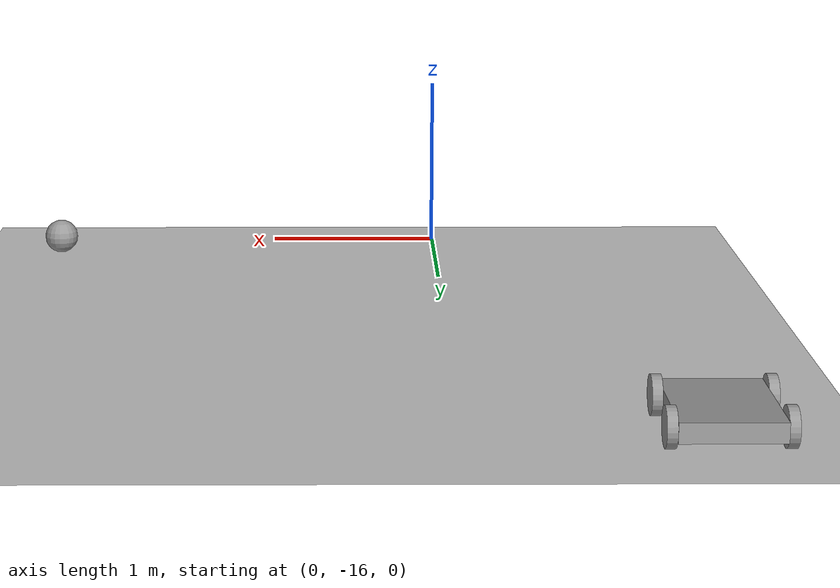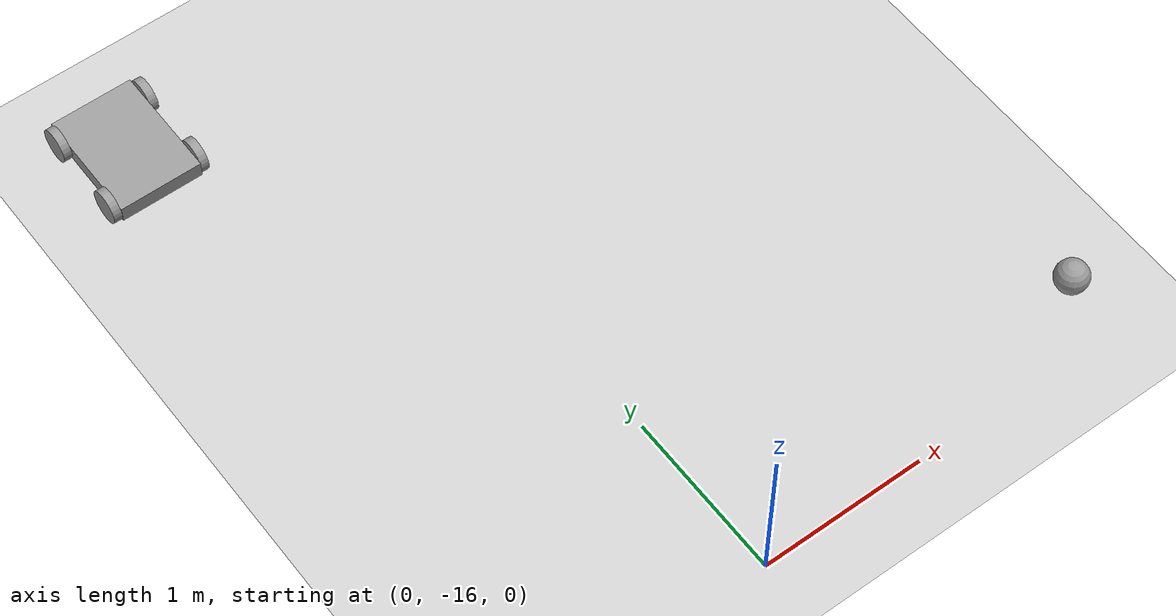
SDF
<sdf version="1.6">
 <world name="default">
  <model name="ground_plane">
   <static>1</static>
   <link name="link">
    <collision name="collision">
     <geometry><plane><normal>0 0 1</normal><size>100 100</size></plane></geometry>
     <surface>
      <contact><collide_bitmask>65535</collide_bitmask></contact>
      <friction><ode><mu>100</mu><mu2>50</mu2></ode></friction>
     </surface>
    </collision>
    <visual name="visual">
     <cast_shadows>0</cast_shadows>
     <geometry><plane><normal>0 0 1</normal><size>100 100</size></plane></geometry>
     <material>
      <script><uri>file://media/materials/scripts/gazebo.material</uri><name>Gazebo/Grey</name></script>
     </material>
    </visual>
   </link>
  </model>
  <model name="robot_car">
   <model name="robot_car">
    <model name="myrobot">
     <link name="link_1">
      <pose>0.275023 -0.249989 0 1.5707 0 1.5707</pose>
      <inertial>
       <mass>1</mass>
       <inertia><ixx>0.145833</ixx><ixy>0</ixy><ixz>0</ixz><iyy>0.145833</iyy><iyz>0</iyz><izz>0.125</izz></inertia>
      </inertial>
      <visual name="visual">
       <geometry><cylinder><radius>0.1</radius><length>0.05</length></cylinder></geometry>
       <material>
        <lighting>1</lighting>
        <script><uri>file://media/materials/scripts/gazebo.material</uri><name>Gazebo/Grey</name></script>
        <shader type="pixel"><normal_map>__default__</normal_map></shader>
        <ambient>0.3 0.3 0.3 1</ambient>
        <diffuse>0.7 0.7 0.7 1</diffuse>
        <specular>0.01 0.01 0.01 1</specular>
        <emissive>0 0 0 1</emissive>
       </material>
      </visual>
      <collision name="collision">
       <geometry><cylinder><radius>0.1</radius><length>0.05</length></cylinder></geometry>
       <surface>
        <friction>
         <ode><mu>1</mu><mu2>1</mu2><fdir1>0 0 0</fdir1><slip1>0</slip1><slip2>0</slip2></ode>
         <torsional>
          <coefficient>1</coefficient>
          <patch_radius>0</patch_radius>
          <surface_radius>0</surface_radius>
          <use_patch_radius>1</use_patch_radius>
          <ode><slip>0</slip></ode>
         </torsional>
        </friction>
        <bounce><restitution_coefficient>0</restitution_coefficient><threshold>1e+06</threshold></bounce>
        <contact>
         <collide_without_contact>0</collide_without_contact>
         <collide_without_contact_bitmask>1</collide_without_contact_bitmask>
         <collide_bitmask>1</collide_bitmask>
         <ode>
          <soft_cfm>0</soft_cfm>
          <soft_erp>0.2</soft_erp>
          <kp>1e+13</kp>
          <kd>1</kd>
          <max_vel>0.01</max_vel>
          <min_depth>0</min_depth>
         </ode>
         <bullet>
          <split_impulse>1</split_impulse>
          <split_impulse_penetration_threshold>-0.01</split_impulse_penetration_threshold>
          <soft_cfm>0</soft_cfm>
          <soft_erp>0.2</soft_erp>
          <kp>1e+13</kp>
          <kd>1</kd>
         </bullet>
        </contact>
       </surface>
      </collision>
     </link>
     <link name="link_1_clone">
      <pose>0.275019 0.249995 0 1.5707 0 1.5707</pose>
      <inertial>
       <mass>1</mass>
       <inertia><ixx>0.145833</ixx><ixy>0</ixy><ixz>0</ixz><iyy>0.145833</iyy><iyz>0</iyz><izz>0.125</izz></inertia>
      </inertial>
      <visual name="visual">
       <geometry><cylinder><radius>0.1</radius><length>0.05</length></cylinder></geometry>
       <material>
        <lighting>1</lighting>
        <script><uri>file://media/materials/scripts/gazebo.material</uri><name>Gazebo/Grey</name></script>
        <shader type="pixel"><normal_map>__default__</normal_map></shader>
        <ambient>0.3 0.3 0.3 1</ambient>
        <diffuse>0.7 0.7 0.7 1</diffuse>
        <specular>0.01 0.01 0.01 1</specular>
        <emissive>0 0 0 1</emissive>
       </material>
      </visual>
      <collision name="collision">
       <geometry><cylinder><radius>0.1</radius><length>0.05</length></cylinder></geometry>
       <surface>
        <friction>
         <ode><mu>1</mu><mu2>1</mu2><fdir1>0 0 0</fdir1><slip1>0</slip1><slip2>0</slip2></ode>
         <torsional>
          <coefficient>1</coefficient>
          <patch_radius>0</patch_radius>
          <surface_radius>0</surface_radius>
          <use_patch_radius>1</use_patch_radius>
          <ode><slip>0</slip></ode>
         </torsional>
        </friction>
        <bounce><restitution_coefficient>0</restitution_coefficient><threshold>1e+06</threshold></bounce>
        <contact>
         <collide_without_contact>0</collide_without_contact>
         <collide_without_contact_bitmask>1</collide_without_contact_bitmask>
         <collide_bitmask>1</collide_bitmask>
         <ode>
          <soft_cfm>0</soft_cfm>
          <soft_erp>0.2</soft_erp>
          <kp>1e+13</kp>
          <kd>1</kd>
          <max_vel>0.01</max_vel>
          <min_depth>0</min_depth>
         </ode>
         <bullet>
          <split_impulse>1</split_impulse>
          <split_impulse_penetration_threshold>-0.01</split_impulse_penetration_threshold>
          <soft_cfm>0</soft_cfm>
          <soft_erp>0.2</soft_erp>
          <kp>1e+13</kp>
          <kd>1</kd>
         </bullet>
        </contact>
       </surface>
      </collision>
     </link>
     <link name="link_1_clone_0">
      <pose>-0.27502 0.249995 0 1.5707 0 1.5707</pose>
      <inertial>
       <mass>1</mass>
       <inertia><ixx>0.145833</ixx><ixy>0</ixy><ixz>0</ixz><iyy>0.145833</iyy><iyz>0</iyz><izz>0.125</izz></inertia>
      </inertial>
      <visual name="visual">
       <geometry><cylinder><radius>0.1</radius><length>0.05</length></cylinder></geometry>
       <material>
        <lighting>1</lighting>
        <script><uri>file://media/materials/scripts/gazebo.material</uri><name>Gazebo/Grey</name></script>
        <shader type="pixel"><normal_map>__default__</normal_map></shader>
        <ambient>0.3 0.3 0.3 1</ambient>
        <diffuse>0.7 0.7 0.7 1</diffuse>
        <specular>0.01 0.01 0.01 1</specular>
        <emissive>0 0 0 1</emissive>
       </material>
      </visual>
      <collision name="collision">
       <geometry><cylinder><radius>0.1</radius><length>0.05</length></cylinder></geometry>
       <surface>
        <friction>
         <ode><mu>1</mu><mu2>1</mu2><fdir1>0 0 0</fdir1><slip1>0</slip1><slip2>0</slip2></ode>
         <torsional>
          <coefficient>1</coefficient>
          <patch_radius>0</patch_radius>
          <surface_radius>0</surface_radius>
          <use_patch_radius>1</use_patch_radius>
          <ode><slip>0</slip></ode>
         </torsional>
        </friction>
        <bounce><restitution_coefficient>0</restitution_coefficient><threshold>1e+06</threshold></bounce>
        <contact>
         <collide_without_contact>0</collide_without_contact>
         <collide_without_contact_bitmask>1</collide_without_contact_bitmask>
         <collide_bitmask>1</collide_bitmask>
         <ode>
          <soft_cfm>0</soft_cfm>
          <soft_erp>0.2</soft_erp>
          <kp>1e+13</kp>
          <kd>1</kd>
          <max_vel>0.01</max_vel>
          <min_depth>0</min_depth>
         </ode>
         <bullet>
          <split_impulse>1</split_impulse>
          <split_impulse_penetration_threshold>-0.01</split_impulse_penetration_threshold>
          <soft_cfm>0</soft_cfm>
          <soft_erp>0.2</soft_erp>
          <kp>1e+13</kp>
          <kd>1</kd>
         </bullet>
        </contact>
       </surface>
      </collision>
     </link>
     <link name="link_1_clone_1">
      <pose>-0.27502 -0.25 0 1.5707 0 1.5707</pose>
      <inertial>
       <mass>1</mass>
       <inertia><ixx>0.145833</ixx><ixy>0</ixy><ixz>0</ixz><iyy>0.145833</iyy><iyz>0</iyz><izz>0.125</izz></inertia>
      </inertial>
      <visual name="visual">
       <geometry><cylinder><radius>0.1</radius><length>0.05</length></cylinder></geometry>
       <material>
        <lighting>1</lighting>
        <script><uri>file://media/materials/scripts/gazebo.material</uri><name>Gazebo/Grey</name></script>
        <shader type="pixel"><normal_map>__default__</normal_map></shader>
        <ambient>0.3 0.3 0.3 1</ambient>
        <diffuse>0.7 0.7 0.7 1</diffuse>
        <specular>0.01 0.01 0.01 1</specular>
        <emissive>0 0 0 1</emissive>
       </material>
      </visual>
      <collision name="collision">
       <geometry><cylinder><radius>0.1</radius><length>0.05</length></cylinder></geometry>
       <surface>
        <friction>
         <ode><mu>1</mu><mu2>1</mu2><fdir1>0 0 0</fdir1><slip1>0</slip1><slip2>0</slip2></ode>
         <torsional>
          <coefficient>1</coefficient>
          <patch_radius>0</patch_radius>
          <surface_radius>0</surface_radius>
          <use_patch_radius>1</use_patch_radius>
          <ode><slip>0</slip></ode>
         </torsional>
        </friction>
        <bounce><restitution_coefficient>0</restitution_coefficient><threshold>1e+06</threshold></bounce>
        <contact>
         <collide_without_contact>0</collide_without_contact>
         <collide_without_contact_bitmask>1</collide_without_contact_bitmask>
         <collide_bitmask>1</collide_bitmask>
         <ode>
          <soft_cfm>0</soft_cfm>
          <soft_erp>0.2</soft_erp>
          <kp>1e+13</kp>
          <kd>1</kd>
          <max_vel>0.01</max_vel>
          <min_depth>0</min_depth>
         </ode>
         <bullet>
          <split_impulse>1</split_impulse>
          <split_impulse_penetration_threshold>-0.01</split_impulse_penetration_threshold>
          <soft_cfm>0</soft_cfm>
          <soft_erp>0.2</soft_erp>
          <kp>1e+13</kp>
          <kd>1</kd>
         </bullet>
        </contact>
       </surface>
      </collision>
     </link>
     <link name="link_2">
      <pose>-0 -2e-06 0 0 -0 0</pose>
      <inertial>
       <mass>1</mass>
       <inertia>
        <ixx>0.166667</ixx>
        <ixy>0</ixy>
        <ixz>0</ixz>
        <iyy>0.166667</iyy>
        <iyz>0</iyz>
        <izz>0.166667</izz>
       </inertia>
      </inertial>
      <visual name="visual">
       <geometry><box><size>0.5 0.7 0.1</size></box></geometry>
       <material>
        <lighting>1</lighting>
        <script><uri>file://media/materials/scripts/gazebo.material</uri><name>Gazebo/Grey</name></script>
        <shader type="pixel"><normal_map>__default__</normal_map></shader>
        <ambient>0.3 0.3 0.3 1</ambient>
        <diffuse>0.7 0.7 0.7 1</diffuse>
        <specular>0.01 0.01 0.01 1</specular>
        <emissive>0 0 0 1</emissive>
       </material>
      </visual>
      <collision name="collision">
       <geometry><box><size>0.5 0.7 0.1</size></box></geometry>
       <surface>
        <friction>
         <ode><mu>1</mu><mu2>1</mu2><fdir1>0 0 0</fdir1><slip1>0</slip1><slip2>0</slip2></ode>
         <torsional>
          <coefficient>1</coefficient>
          <patch_radius>0</patch_radius>
          <surface_radius>0</surface_radius>
          <use_patch_radius>1</use_patch_radius>
          <ode><slip>0</slip></ode>
         </torsional>
        </friction>
        <bounce><restitution_coefficient>0</restitution_coefficient><threshold>1e+06</threshold></bounce>
        <contact>
         <collide_without_contact>0</collide_without_contact>
         <collide_without_contact_bitmask>1</collide_without_contact_bitmask>
         <collide_bitmask>1</collide_bitmask>
         <ode>
          <soft_cfm>0</soft_cfm>
          <soft_erp>0.2</soft_erp>
          <kp>1e+13</kp>
          <kd>1</kd>
          <max_vel>0.01</max_vel>
          <min_depth>0</min_depth>
         </ode>
         <bullet>
          <split_impulse>1</split_impulse>
          <split_impulse_penetration_threshold>-0.01</split_impulse_penetration_threshold>
          <soft_cfm>0</soft_cfm>
          <soft_erp>0.2</soft_erp>
          <kp>1e+13</kp>
          <kd>1</kd>
         </bullet>
        </contact>
       </surface>
      </collision>
     </link>
     <joint name="link_2_JOINT_10" type="revolute">
      <parent>link_2</parent>
      <child>link_1</child>
      <axis>
       <xyz>1 0 0</xyz>
       <use_parent_model_frame>0</use_parent_model_frame>
       <limit>
        <lower>-1.79769e+308</lower>
        <upper>1.79769e+308</upper>
        <effort>-1</effort>
        <velocity>-1</velocity>
       </limit>
       <dynamics>
        <spring_reference>0</spring_reference>
        <spring_stiffness>0</spring_stiffness>
        <damping>0</damping>
       </dynamics>
      </axis>
      <physics>
       <ode><limit><cfm>0</cfm><erp>0.2</erp></limit><suspension><cfm>0</cfm><erp>0.2</erp></suspension></ode>
      </physics>
     </joint>
     <joint name="link_2_JOINT_11" type="revolute">
      <parent>link_2</parent>
      <child>link_1_clone_0</child>
      <axis>
       <xyz>1 0 0</xyz>
       <use_parent_model_frame>0</use_parent_model_frame>
       <limit>
        <lower>-1.79769e+308</lower>
        <upper>1.79769e+308</upper>
        <effort>-1</effort>
        <velocity>-1</velocity>
       </limit>
       <dynamics>
        <spring_reference>0</spring_reference>
        <spring_stiffness>0</spring_stiffness>
        <damping>0</damping>
       </dynamics>
      </axis>
      <physics>
       <ode><limit><cfm>0</cfm><erp>0.2</erp></limit><suspension><cfm>0</cfm><erp>0.2</erp></suspension></ode>
      </physics>
     </joint>
     <joint name="link_2_JOINT_12" type="revolute">
      <parent>link_2</parent>
      <child>link_1_clone_1</child>
      <axis>
       <xyz>1 0 0</xyz>
       <use_parent_model_frame>0</use_parent_model_frame>
       <limit>
        <lower>-1.79769e+308</lower>
        <upper>1.79769e+308</upper>
        <effort>-1</effort>
        <velocity>-1</velocity>
       </limit>
       <dynamics>
        <spring_reference>0</spring_reference>
        <spring_stiffness>0</spring_stiffness>
        <damping>0</damping>
       </dynamics>
      </axis>
      <physics>
       <ode><limit><cfm>0</cfm><erp>0.2</erp></limit><suspension><cfm>0</cfm><erp>0.2</erp></suspension></ode>
      </physics>
     </joint>
     <joint name="link_2_JOINT_3" type="revolute">
      <parent>link_2</parent>
      <child>link_1</child>
      <axis>
       <xyz>1 0 0</xyz>
       <use_parent_model_frame>0</use_parent_model_frame>
       <limit>
        <lower>-1.79769e+308</lower>
        <upper>1.79769e+308</upper>
        <effort>-1</effort>
        <velocity>-1</velocity>
       </limit>
       <dynamics>
        <spring_reference>0</spring_reference>
        <spring_stiffness>0</spring_stiffness>
        <damping>0</damping>
       </dynamics>
      </axis>
      <physics>
       <ode><limit><cfm>0</cfm><erp>0.2</erp></limit><suspension><cfm>0</cfm><erp>0.2</erp></suspension></ode>
      </physics>
     </joint>
     <joint name="link_2_JOINT_4" type="revolute">
      <parent>link_2</parent>
      <child>link_1_clone</child>
      <axis>
       <xyz>1 0 0</xyz>
       <use_parent_model_frame>0</use_parent_model_frame>
       <limit>
        <lower>-1.79769e+308</lower>
        <upper>1.79769e+308</upper>
        <effort>-1</effort>
        <velocity>-1</velocity>
       </limit>
       <dynamics>
        <spring_reference>0</spring_reference>
        <spring_stiffness>0</spring_stiffness>
        <damping>0</damping>
       </dynamics>
      </axis>
      <physics>
       <ode><limit><cfm>0</cfm><erp>0.2</erp></limit><suspension><cfm>0</cfm><erp>0.2</erp></suspension></ode>
      </physics>
     </joint>
     <joint name="link_2_JOINT_5" type="revolute">
      <parent>link_2</parent>
      <child>link_1_clone_0</child>
      <axis>
       <xyz>1 0 0</xyz>
       <use_parent_model_frame>0</use_parent_model_frame>
       <limit>
        <lower>-1.79769e+308</lower>
        <upper>1.79769e+308</upper>
        <effort>-1</effort>
        <velocity>-1</velocity>
       </limit>
       <dynamics>
        <spring_reference>0</spring_reference>
        <spring_stiffness>0</spring_stiffness>
        <damping>0</damping>
       </dynamics>
      </axis>
      <physics>
       <ode><limit><cfm>0</cfm><erp>0.2</erp></limit><suspension><cfm>0</cfm><erp>0.2</erp></suspension></ode>
      </physics>
     </joint>
     <joint name="link_2_JOINT_6" type="revolute">
      <parent>link_2</parent>
      <child>link_1_clone_1</child>
      <axis>
       <xyz>1 0 0</xyz>
       <use_parent_model_frame>0</use_parent_model_frame>
       <limit>
        <lower>-1.79769e+308</lower>
        <upper>1.79769e+308</upper>
        <effort>-1</effort>
        <velocity>-1</velocity>
       </limit>
       <dynamics>
        <spring_reference>0</spring_reference>
        <spring_stiffness>0</spring_stiffness>
        <damping>0</damping>
       </dynamics>
      </axis>
      <physics>
       <ode><limit><cfm>0</cfm><erp>0.2</erp></limit><suspension><cfm>0</cfm><erp>0.2</erp></suspension></ode>
      </physics>
     </joint>
     <joint name="link_2_JOINT_7" type="revolute">
      <parent>link_2</parent>
      <child>link_1_clone_1</child>
      <axis>
       <xyz>1 0 0</xyz>
       <use_parent_model_frame>0</use_parent_model_frame>
       <limit>
        <lower>-1.79769e+308</lower>
        <upper>1.79769e+308</upper>
        <effort>-1</effort>
        <velocity>-1</velocity>
       </limit>
       <dynamics>
        <spring_reference>0</spring_reference>
        <spring_stiffness>0</spring_stiffness>
        <damping>0</damping>
       </dynamics>
      </axis>
      <physics>
       <ode><limit><cfm>0</cfm><erp>0.2</erp></limit><suspension><cfm>0</cfm><erp>0.2</erp></suspension></ode>
      </physics>
     </joint>
     <joint name="link_2_JOINT_9" type="revolute">
      <parent>link_2</parent>
      <child>link_1_clone</child>
      <axis>
       <xyz>1 0 0</xyz>
       <use_parent_model_frame>0</use_parent_model_frame>
       <limit>
        <lower>-1.79769e+308</lower>
        <upper>1.79769e+308</upper>
        <effort>-1</effort>
        <velocity>-1</velocity>
       </limit>
       <dynamics>
        <spring_reference>0</spring_reference>
        <spring_stiffness>0</spring_stiffness>
        <damping>0</damping>
       </dynamics>
      </axis>
      <physics>
       <ode><limit><cfm>0</cfm><erp>0.2</erp></limit><suspension><cfm>0</cfm><erp>0.2</erp></suspension></ode>
      </physics>
     </joint>
     <static>0</static>
     <pose>-0 4.4e-05 0 0 -0 0</pose>
    </model>
    <static>0</static>
    <pose>4e-06 -2.3e-05 0 0 -0 0</pose>
   </model>
   <static>0</static>
   <pose>-1.19562 -12.012 0.100027 0 9.7e-05 0.000111</pose>
  </model>
  <model name="white_ball">
   <link name="link_0">
    <inertial>
     <mass>1</mass>
     <inertia><ixx>0.1</ixx><ixy>0</ixy><ixz>0</ixz><iyy>0.1</iyy><iyz>0</iyz><izz>0.1</izz></inertia>
    </inertial>
    <visual name="visual">
     <geometry><sphere><radius>0.1</radius></sphere></geometry>
     <material>
      <lighting>1</lighting>
      <script><uri>file://media/materials/scripts/gazebo.material</uri><name>Gazebo/Grey</name></script>
      <shader type="vertex"><normal_map>__default__</normal_map></shader>
      <ambient>1 1 1 1</ambient>
      <diffuse>1 1 1 1</diffuse>
      <specular>1 1 1 1</specular>
      <emissive>1 1 1 1</emissive>
     </material>
    </visual>
    <collision name="collision">
     <geometry><sphere><radius>0.1</radius></sphere></geometry>
     <surface>
      <friction>
       <ode><mu>1</mu><mu2>1</mu2><fdir1>0 0 0</fdir1><slip1>0</slip1><slip2>0</slip2></ode>
       <torsional>
        <coefficient>1</coefficient>
        <patch_radius>0</patch_radius>
        <surface_radius>0</surface_radius>
        <use_patch_radius>1</use_patch_radius>
        <ode><slip>0</slip></ode>
       </torsional>
      </friction>
      <bounce><restitution_coefficient>0</restitution_coefficient><threshold>1e+06</threshold></bounce>
      <contact>
       <collide_without_contact>0</collide_without_contact>
       <collide_without_contact_bitmask>1</collide_without_contact_bitmask>
       <collide_bitmask>1</collide_bitmask>
       <ode>
        <soft_cfm>0</soft_cfm>
        <soft_erp>0.2</soft_erp>
        <kp>1e+13</kp>
        <kd>1</kd>
        <max_vel>0.01</max_vel>
        <min_depth>0</min_depth>
       </ode>
       <bullet>
        <split_impulse>1</split_impulse>
        <split_impulse_penetration_threshold>-0.01</split_impulse_penetration_threshold>
        <soft_cfm>0</soft_cfm>
        <soft_erp>0.2</soft_erp>
        <kp>1e+13</kp>
        <kd>1</kd>
       </bullet>
      </contact>
     </surface>
    </collision>
   </link>
   <static>0</static>
   <pose>2.31597 -15.6642 0.1 0 -0 0</pose>
  </model>
 </world>
</sdf>
